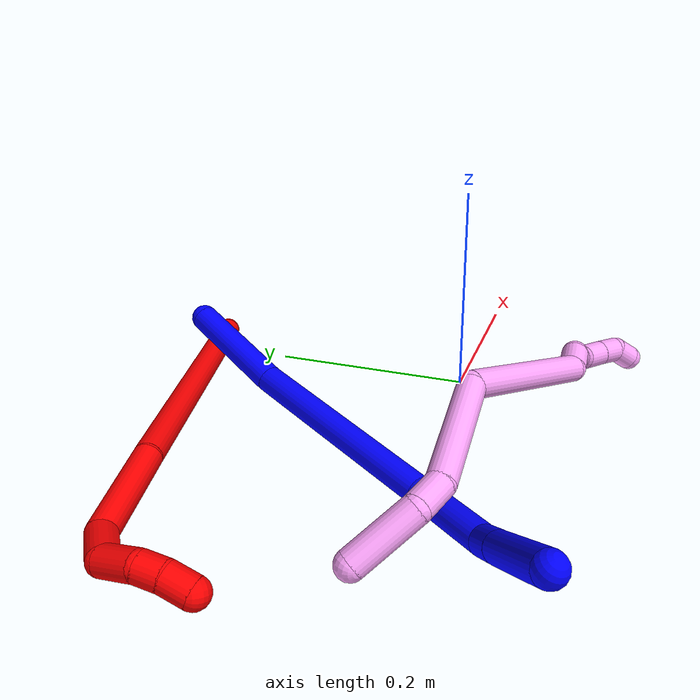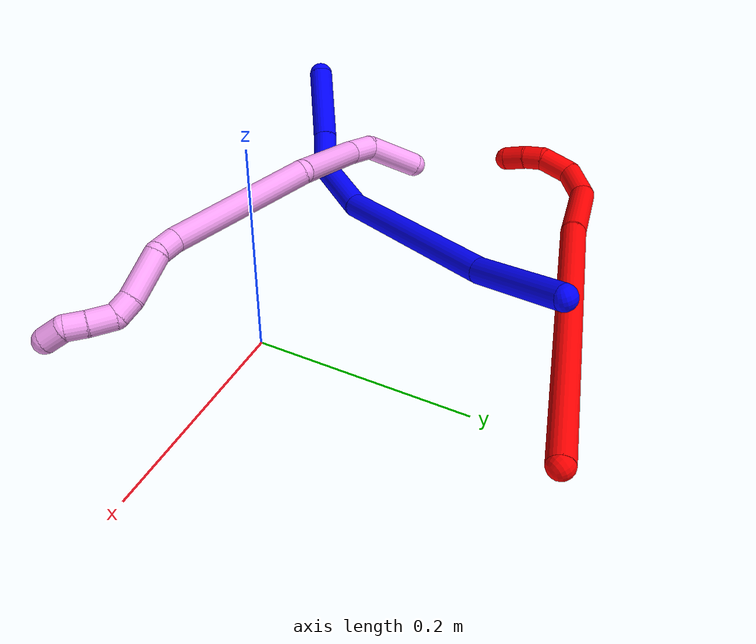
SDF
<sdf version="1.7">
 <world name="default">
  <model name="photoneo_s_sensor">
   <static>1</static>
   <pose>0 0 2 1.57079 1.57079 3.14159</pose>
   <link name="link">
    <inertial><mass>0.1</mass></inertial>
    <sensor name="sensor" type="depth">
     <update_rate>30</update_rate>
     <camera>
      <horizontal_fov>1.22</horizontal_fov>
      <image><width>1920</width><height>1200</height><format>B8G8R8</format></image>
      <clip><near>0.1</near><far>4</far></clip>
      <depth_camera><output>points</output></depth_camera>
     </camera>
     <plugin name="camera_plugin" filename="libgazebo_ros_depth_camera.so">
      <baseline>0.2</baseline>
      <alwaysOn>1</alwaysOn>
      <updateRate>0.0</updateRate>
      <cameraName>camera_ir</cameraName>
      <imageTopicName>/camera/color/image_raw</imageTopicName>
      <cameraInfoTopicName>/camera/color/camera_info</cameraInfoTopicName>
      <depthImageTopicName>/camera/depth/image_raw</depthImageTopicName>
      <depthImageCameraInfoTopicName>/camera/depth/camera_info</depthImageCameraInfoTopicName>
      <pointCloudTopicName>/camera/depth/points</pointCloudTopicName>
      <frameName>fr_optical</frameName>
      <pointCloudCutoff>0.1</pointCloudCutoff>
      <pointCloudCutoffMax>2.0</pointCloudCutoffMax>
      <distortionK1>0</distortionK1>
      <distortionK2>0</distortionK2>
      <distortionK3>0</distortionK3>
      <distortionT1>0</distortionT1>
      <distortionT2>0</distortionT2>
      <CxPrime>0</CxPrime>
      <Cx>0</Cx>
      <Cy>0</Cy>
      <focalLength>0</focalLength>
      <hackBaseline>0</hackBaseline>
     </plugin>
    </sensor>
   </link>
  </model>
  <model name="bin">
   <static>1</static>
   <link name="bottom">
    <collision name="collision-bottom">
     <pose>0 0 -0.01 0 -0 0</pose>
     <geometry><box><size>0.8 0.6 0.02</size></box></geometry>
     <surface>
      <friction><ode><mu>100</mu><mu2>100</mu2></ode></friction>
      <contact><collide_bitmask>65535</collide_bitmask></contact>
     </surface>
    </collision>
   </link>
   <link name="west_wall">
    <collision name="collision-west_wall">
     <pose>-0.41 0 0.1 0 -0 0</pose>
     <geometry><box><size>0.02 0.6 0.2</size></box></geometry>
     <surface>
      <friction><ode><mu>100</mu><mu2>100</mu2></ode></friction>
      <contact><collide_bitmask>65535</collide_bitmask></contact>
     </surface>
    </collision>
   </link>
   <link name="east_wall">
    <collision name="collision-east_wall">
     <pose>0.41 0 0.1 0 -0 0</pose>
     <geometry><box><size>0.02 0.6 0.2</size></box></geometry>
     <surface>
      <friction><ode><mu>100</mu><mu2>100</mu2></ode></friction>
      <contact><collide_bitmask>65535</collide_bitmask></contact>
     </surface>
    </collision>
   </link>
   <link name="south_wall">
    <collision name="collision-south_wall">
     <pose>0 -0.31 0.1 0 -0 0</pose>
     <geometry><box><size>0.8 0.02 0.2</size></box></geometry>
     <surface>
      <friction><ode><mu>100</mu><mu2>100</mu2></ode></friction>
      <contact><collide_bitmask>65535</collide_bitmask></contact>
     </surface>
    </collision>
   </link>
   <link name="north_wall">
    <collision name="collision-north_wall">
     <pose>0 0.31 0.1 0 -0 0</pose>
     <geometry><box><size>0.8 0.02 0.2</size></box></geometry>
     <surface>
      <friction><ode><mu>100</mu><mu2>100</mu2></ode></friction>
      <contact><collide_bitmask>65535</collide_bitmask></contact>
     </surface>
    </collision>
   </link>
  </model>
  <model name="1">
   <static>0</static>
   <link name="1">
    <collision name="collision-cylinder-e_1_1_4">
     <pose>0.004265 -0.051858 -0.007072 1.70633 0.081313 0.093138</pose>
     <geometry><cylinder><radius>0.0125</radius><length>0.105022</length></cylinder></geometry>
     <surface>
      <friction><ode><mu>1.16</mu><mu2>1.16</mu2><slip1>0</slip1><slip2>0</slip2></ode></friction>
      <contact><ode><kp>1e+06</kp><kd>1</kd><max_vel>0</max_vel><min_depth>0.001</min_depth></ode></contact>
     </surface>
    </collision>
    <visual name="visual-cylinder-e_1_1_4">
     <pose>0.004265 -0.051858 -0.007072 1.70633 0.081313 0.093138</pose>
     <geometry><cylinder><radius>0.0125</radius><length>0.105022</length></cylinder></geometry>
     <material><ambient>0 0 1 1</ambient></material>
    </visual>
    <collision name="collision-cylinder-e_2_4_5">
     <pose>0.01842 -0.195874 -0.041775 1.86209 0.102433 0.137553</pose>
     <geometry><cylinder><radius>0.0125</radius><length>0.193438</length></cylinder></geometry>
     <surface>
      <friction><ode><mu>1.16</mu><mu2>1.16</mu2><slip1>0</slip1><slip2>0</slip2></ode></friction>
      <contact><ode><kp>1e+06</kp><kd>1</kd><max_vel>0</max_vel><min_depth>0.001</min_depth></ode></contact>
     </surface>
    </collision>
    <visual name="visual-cylinder-e_2_4_5">
     <pose>0.01842 -0.195874 -0.041775 1.86209 0.102433 0.137553</pose>
     <geometry><cylinder><radius>0.0125</radius><length>0.193438</length></cylinder></geometry>
     <material><ambient>0 0 1 1</ambient></material>
    </visual>
    <collision name="collision-cylinder-e_3_5_6">
     <pose>0.039805 -0.321623 -0.087193 2.05777 0.293686 0.481823</pose>
     <geometry><cylinder><radius>0.0125</radius><length>0.079417</length></cylinder></geometry>
     <surface>
      <friction><ode><mu>1.16</mu><mu2>1.16</mu2><slip1>0</slip1><slip2>0</slip2></ode></friction>
      <contact><ode><kp>1e+06</kp><kd>1</kd><max_vel>0</max_vel><min_depth>0.001</min_depth></ode></contact>
     </surface>
    </collision>
    <visual name="visual-cylinder-e_3_5_6">
     <pose>0.039805 -0.321623 -0.087193 2.05777 0.293686 0.481823</pose>
     <geometry><cylinder><radius>0.0125</radius><length>0.079417</length></cylinder></geometry>
     <material><ambient>0 0 1 1</ambient></material>
    </visual>
    <collision name="collision-cylinder-e_4_6_7">
     <pose>0.062319 -0.362114 -0.119208 2.69001 0.608543 1.87848</pose>
     <geometry><cylinder><radius>0.0125</radius><length>0.038549</length></cylinder></geometry>
     <surface>
      <friction><ode><mu>1.16</mu><mu2>1.16</mu2><slip1>0</slip1><slip2>0</slip2></ode></friction>
      <contact><ode><kp>1e+06</kp><kd>1</kd><max_vel>0</max_vel><min_depth>0.001</min_depth></ode></contact>
     </surface>
    </collision>
    <visual name="visual-cylinder-e_4_6_7">
     <pose>0.062319 -0.362114 -0.119208 2.69001 0.608543 1.87848</pose>
     <geometry><cylinder><radius>0.0125</radius><length>0.038549</length></cylinder></geometry>
     <material><ambient>0 0 1 1</ambient></material>
    </visual>
    <collision name="collision-cylinder-e_5_7_2">
     <pose>0.095687 -0.385654 -0.164579 2.65088 0.564326 1.71674</pose>
     <geometry><cylinder><radius>0.0125</radius><length>0.083574</length></cylinder></geometry>
     <surface>
      <friction><ode><mu>1.16</mu><mu2>1.16</mu2><slip1>0</slip1><slip2>0</slip2></ode></friction>
      <contact><ode><kp>1e+06</kp><kd>1</kd><max_vel>0</max_vel><min_depth>0.001</min_depth></ode></contact>
     </surface>
    </collision>
    <visual name="visual-cylinder-e_5_7_2">
     <pose>0.095687 -0.385654 -0.164579 2.65088 0.564326 1.71674</pose>
     <geometry><cylinder><radius>0.0125</radius><length>0.083574</length></cylinder></geometry>
     <material><ambient>0 0 1 1</ambient></material>
    </visual>
    <collision name="collision-sphere-2">
     <pose>0.118036 -0.402293 -0.19572 0 -0 0</pose>
     <geometry><sphere><radius>0.0125</radius></sphere></geometry>
     <surface>
      <friction><ode><mu>1.16</mu><mu2>1.16</mu2><slip1>0</slip1><slip2>0</slip2></ode></friction>
      <contact><ode><kp>1e+06</kp><kd>1</kd><max_vel>0</max_vel><min_depth>0.001</min_depth></ode></contact>
     </surface>
    </collision>
    <visual name="visual-sphere-2">
     <pose>0.118036 -0.402293 -0.19572 0 -0 0</pose>
     <geometry><sphere><radius>0.0125</radius></sphere></geometry>
     <material><ambient>0 0 1 1</ambient></material>
    </visual>
    <collision name="collision-sphere-7">
     <pose>0.073337 -0.369015 -0.133438 0 -0 0</pose>
     <geometry><sphere><radius>0.0125</radius></sphere></geometry>
     <surface>
      <friction><ode><mu>1.16</mu><mu2>1.16</mu2><slip1>0</slip1><slip2>0</slip2></ode></friction>
      <contact><ode><kp>1e+06</kp><kd>1</kd><max_vel>0</max_vel><min_depth>0.001</min_depth></ode></contact>
     </surface>
    </collision>
    <visual name="visual-sphere-7">
     <pose>0.073337 -0.369015 -0.133438 0 -0 0</pose>
     <geometry><sphere><radius>0.0125</radius></sphere></geometry>
     <material><ambient>0 0 1 1</ambient></material>
    </visual>
    <collision name="collision-sphere-6">
     <pose>0.0513 -0.355213 -0.104979 0 -0 0</pose>
     <geometry><sphere><radius>0.0125</radius></sphere></geometry>
     <surface>
      <friction><ode><mu>1.16</mu><mu2>1.16</mu2><slip1>0</slip1><slip2>0</slip2></ode></friction>
      <contact><ode><kp>1e+06</kp><kd>1</kd><max_vel>0</max_vel><min_depth>0.001</min_depth></ode></contact>
     </surface>
    </collision>
    <visual name="visual-sphere-6">
     <pose>0.0513 -0.355213 -0.104979 0 -0 0</pose>
     <geometry><sphere><radius>0.0125</radius></sphere></geometry>
     <material><ambient>0 0 1 1</ambient></material>
    </visual>
    <collision name="collision-sphere-5">
     <pose>0.02831 -0.288033 -0.069407 0 -0 0</pose>
     <geometry><sphere><radius>0.0125</radius></sphere></geometry>
     <surface>
      <friction><ode><mu>1.16</mu><mu2>1.16</mu2><slip1>0</slip1><slip2>0</slip2></ode></friction>
      <contact><ode><kp>1e+06</kp><kd>1</kd><max_vel>0</max_vel><min_depth>0.001</min_depth></ode></contact>
     </surface>
    </collision>
    <visual name="visual-sphere-5">
     <pose>0.02831 -0.288033 -0.069407 0 -0 0</pose>
     <geometry><sphere><radius>0.0125</radius></sphere></geometry>
     <material><ambient>0 0 1 1</ambient></material>
    </visual>
    <collision name="collision-sphere-1">
     <geometry><sphere><radius>0.0125</radius></sphere></geometry>
     <surface>
      <friction><ode><mu>1.16</mu><mu2>1.16</mu2><slip1>0</slip1><slip2>0</slip2></ode></friction>
      <contact><ode><kp>1e+06</kp><kd>1</kd><max_vel>0</max_vel><min_depth>0.001</min_depth></ode></contact>
     </surface>
    </collision>
    <visual name="visual-sphere-1">
     <geometry><sphere><radius>0.0125</radius></sphere></geometry>
     <material><ambient>0 0 1 1</ambient></material>
    </visual>
    <collision name="collision-sphere-4">
     <pose>0.00853 -0.103715 -0.014144 0 -0 0</pose>
     <geometry><sphere><radius>0.0125</radius></sphere></geometry>
     <surface>
      <friction><ode><mu>1.16</mu><mu2>1.16</mu2><slip1>0</slip1><slip2>0</slip2></ode></friction>
      <contact><ode><kp>1e+06</kp><kd>1</kd><max_vel>0</max_vel><min_depth>0.001</min_depth></ode></contact>
     </surface>
    </collision>
    <visual name="visual-sphere-4">
     <pose>0.00853 -0.103715 -0.014144 0 -0 0</pose>
     <geometry><sphere><radius>0.0125</radius></sphere></geometry>
     <material><ambient>0 0 1 1</ambient></material>
    </visual>
    <inertial>
     <pose>0.035143 -0.230135 -0.068196 0 -0 0</pose>
     <mass>0.5</mass>
     <inertia>
      <ixx>0.000902</ixx>
      <ixy>0</ixy>
      <ixz>0</ixz>
      <iyy>-3.9e-05</iyy>
      <iyz>0</iyz>
      <izz>0.000612</izz>
     </inertia>
    </inertial>
   </link>
   <pose>-0.089279 0.242861 0.076738 2.68162 -0.008813 2.77817</pose>
  </model>
  <model name="2">
   <static>0</static>
   <link name="2">
    <collision name="collision-cylinder-e_1_1_4">
     <pose>-0.04969 -0.092992 0.103955 0.729788 -0.342239 -0.131835</pose>
     <geometry><cylinder><radius>0.0125</radius><length>0.296131</length></cylinder></geometry>
     <surface>
      <friction><ode><mu>1.16</mu><mu2>1.16</mu2><slip1>0</slip1><slip2>0</slip2></ode></friction>
      <contact><ode><kp>1e+06</kp><kd>1</kd><max_vel>0</max_vel><min_depth>0.001</min_depth></ode></contact>
     </surface>
    </collision>
    <visual name="visual-cylinder-e_1_1_4">
     <pose>-0.04969 -0.092992 0.103955 0.729788 -0.342239 -0.131835</pose>
     <geometry><cylinder><radius>0.0125</radius><length>0.296131</length></cylinder></geometry>
     <material><ambient>1 0 0 1</ambient></material>
    </visual>
    <collision name="collision-cylinder-e_2_4_5">
     <pose>-0.120975 -0.208218 0.239619 0.611547 -0.50867 -0.163761</pose>
     <geometry><cylinder><radius>0.0125</radius><length>0.088682</length></cylinder></geometry>
     <surface>
      <friction><ode><mu>1.16</mu><mu2>1.16</mu2><slip1>0</slip1><slip2>0</slip2></ode></friction>
      <contact><ode><kp>1e+06</kp><kd>1</kd><max_vel>0</max_vel><min_depth>0.001</min_depth></ode></contact>
     </surface>
    </collision>
    <visual name="visual-cylinder-e_2_4_5">
     <pose>-0.120975 -0.208218 0.239619 0.611547 -0.50867 -0.163761</pose>
     <geometry><cylinder><radius>0.0125</radius><length>0.088682</length></cylinder></geometry>
     <material><ambient>1 0 0 1</ambient></material>
    </visual>
    <collision name="collision-cylinder-e_3_5_6">
     <pose>-0.147418 -0.247608 0.279114 1.14472 -0.25187 -0.162784</pose>
     <geometry><cylinder><radius>0.0125</radius><length>0.038906</length></cylinder></geometry>
     <surface>
      <friction><ode><mu>1.16</mu><mu2>1.16</mu2><slip1>0</slip1><slip2>0</slip2></ode></friction>
      <contact><ode><kp>1e+06</kp><kd>1</kd><max_vel>0</max_vel><min_depth>0.001</min_depth></ode></contact>
     </surface>
    </collision>
    <visual name="visual-cylinder-e_3_5_6">
     <pose>-0.147418 -0.247608 0.279114 1.14472 -0.25187 -0.162784</pose>
     <geometry><cylinder><radius>0.0125</radius><length>0.038906</length></cylinder></geometry>
     <material><ambient>1 0 0 1</ambient></material>
    </visual>
    <collision name="collision-cylinder-e_4_6_7">
     <pose>-0.152096 -0.280642 0.282109 1.86379 0.010244 0.013791</pose>
     <geometry><cylinder><radius>0.0125</radius><length>0.033174</length></cylinder></geometry>
     <surface>
      <friction><ode><mu>1.16</mu><mu2>1.16</mu2><slip1>0</slip1><slip2>0</slip2></ode></friction>
      <contact><ode><kp>1e+06</kp><kd>1</kd><max_vel>0</max_vel><min_depth>0.001</min_depth></ode></contact>
     </surface>
    </collision>
    <visual name="visual-cylinder-e_4_6_7">
     <pose>-0.152096 -0.280642 0.282109 1.86379 0.010244 0.013791</pose>
     <geometry><cylinder><radius>0.0125</radius><length>0.033174</length></cylinder></geometry>
     <material><ambient>1 0 0 1</ambient></material>
    </visual>
    <collision name="collision-cylinder-e_5_7_8">
     <pose>-0.154829 -0.304668 0.272221 2.12994 -0.293398 -0.521392</pose>
     <geometry><cylinder><radius>0.0125</radius><length>0.020078</length></cylinder></geometry>
     <surface>
      <friction><ode><mu>1.16</mu><mu2>1.16</mu2><slip1>0</slip1><slip2>0</slip2></ode></friction>
      <contact><ode><kp>1e+06</kp><kd>1</kd><max_vel>0</max_vel><min_depth>0.001</min_depth></ode></contact>
     </surface>
    </collision>
    <visual name="visual-cylinder-e_5_7_8">
     <pose>-0.154829 -0.304668 0.272221 2.12994 -0.293398 -0.521392</pose>
     <geometry><cylinder><radius>0.0125</radius><length>0.020078</length></cylinder></geometry>
     <material><ambient>1 0 0 1</ambient></material>
    </visual>
    <collision name="collision-cylinder-e_6_8_2">
     <pose>-0.162967 -0.321288 0.261345 2.16937 -0.471896 -0.854019</pose>
     <geometry><cylinder><radius>0.0125</radius><length>0.023029</length></cylinder></geometry>
     <surface>
      <friction><ode><mu>1.16</mu><mu2>1.16</mu2><slip1>0</slip1><slip2>0</slip2></ode></friction>
      <contact><ode><kp>1e+06</kp><kd>1</kd><max_vel>0</max_vel><min_depth>0.001</min_depth></ode></contact>
     </surface>
    </collision>
    <visual name="visual-cylinder-e_6_8_2">
     <pose>-0.162967 -0.321288 0.261345 2.16937 -0.471896 -0.854019</pose>
     <geometry><cylinder><radius>0.0125</radius><length>0.023029</length></cylinder></geometry>
     <material><ambient>1 0 0 1</ambient></material>
    </visual>
    <collision name="collision-sphere-2">
     <pose>-0.168201 -0.329761 0.255566 0 -0 0</pose>
     <geometry><sphere><radius>0.0125</radius></sphere></geometry>
     <surface>
      <friction><ode><mu>1.16</mu><mu2>1.16</mu2><slip1>0</slip1><slip2>0</slip2></ode></friction>
      <contact><ode><kp>1e+06</kp><kd>1</kd><max_vel>0</max_vel><min_depth>0.001</min_depth></ode></contact>
     </surface>
    </collision>
    <visual name="visual-sphere-2">
     <pose>-0.168201 -0.329761 0.255566 0 -0 0</pose>
     <geometry><sphere><radius>0.0125</radius></sphere></geometry>
     <material><ambient>1 0 0 1</ambient></material>
    </visual>
    <collision name="collision-sphere-4">
     <pose>-0.099381 -0.185984 0.207911 0 -0 0</pose>
     <geometry><sphere><radius>0.0125</radius></sphere></geometry>
     <surface>
      <friction><ode><mu>1.16</mu><mu2>1.16</mu2><slip1>0</slip1><slip2>0</slip2></ode></friction>
      <contact><ode><kp>1e+06</kp><kd>1</kd><max_vel>0</max_vel><min_depth>0.001</min_depth></ode></contact>
     </surface>
    </collision>
    <visual name="visual-sphere-4">
     <pose>-0.099381 -0.185984 0.207911 0 -0 0</pose>
     <geometry><sphere><radius>0.0125</radius></sphere></geometry>
     <material><ambient>1 0 0 1</ambient></material>
    </visual>
    <collision name="collision-sphere-1">
     <geometry><sphere><radius>0.0125</radius></sphere></geometry>
     <surface>
      <friction><ode><mu>1.16</mu><mu2>1.16</mu2><slip1>0</slip1><slip2>0</slip2></ode></friction>
      <contact><ode><kp>1e+06</kp><kd>1</kd><max_vel>0</max_vel><min_depth>0.001</min_depth></ode></contact>
     </surface>
    </collision>
    <visual name="visual-sphere-1">
     <geometry><sphere><radius>0.0125</radius></sphere></geometry>
     <material><ambient>1 0 0 1</ambient></material>
    </visual>
    <collision name="collision-sphere-8">
     <pose>-0.157733 -0.312815 0.267124 0 -0 0</pose>
     <geometry><sphere><radius>0.0125</radius></sphere></geometry>
     <surface>
      <friction><ode><mu>1.16</mu><mu2>1.16</mu2><slip1>0</slip1><slip2>0</slip2></ode></friction>
      <contact><ode><kp>1e+06</kp><kd>1</kd><max_vel>0</max_vel><min_depth>0.001</min_depth></ode></contact>
     </surface>
    </collision>
    <visual name="visual-sphere-8">
     <pose>-0.157733 -0.312815 0.267124 0 -0 0</pose>
     <geometry><sphere><radius>0.0125</radius></sphere></geometry>
     <material><ambient>1 0 0 1</ambient></material>
    </visual>
    <collision name="collision-sphere-5">
     <pose>-0.14257 -0.230453 0.271327 0 -0 0</pose>
     <geometry><sphere><radius>0.0125</radius></sphere></geometry>
     <surface>
      <friction><ode><mu>1.16</mu><mu2>1.16</mu2><slip1>0</slip1><slip2>0</slip2></ode></friction>
      <contact><ode><kp>1e+06</kp><kd>1</kd><max_vel>0</max_vel><min_depth>0.001</min_depth></ode></contact>
     </surface>
    </collision>
    <visual name="visual-sphere-5">
     <pose>-0.14257 -0.230453 0.271327 0 -0 0</pose>
     <geometry><sphere><radius>0.0125</radius></sphere></geometry>
     <material><ambient>1 0 0 1</ambient></material>
    </visual>
    <collision name="collision-sphere-6">
     <pose>-0.152266 -0.264763 0.2869 0 -0 0</pose>
     <geometry><sphere><radius>0.0125</radius></sphere></geometry>
     <surface>
      <friction><ode><mu>1.16</mu><mu2>1.16</mu2><slip1>0</slip1><slip2>0</slip2></ode></friction>
      <contact><ode><kp>1e+06</kp><kd>1</kd><max_vel>0</max_vel><min_depth>0.001</min_depth></ode></contact>
     </surface>
    </collision>
    <visual name="visual-sphere-6">
     <pose>-0.152266 -0.264763 0.2869 0 -0 0</pose>
     <geometry><sphere><radius>0.0125</radius></sphere></geometry>
     <material><ambient>1 0 0 1</ambient></material>
    </visual>
    <collision name="collision-sphere-7">
     <pose>-0.151926 -0.296522 0.277319 0 -0 0</pose>
     <geometry><sphere><radius>0.0125</radius></sphere></geometry>
     <surface>
      <friction><ode><mu>1.16</mu><mu2>1.16</mu2><slip1>0</slip1><slip2>0</slip2></ode></friction>
      <contact><ode><kp>1e+06</kp><kd>1</kd><max_vel>0</max_vel><min_depth>0.001</min_depth></ode></contact>
     </surface>
    </collision>
    <visual name="visual-sphere-7">
     <pose>-0.151926 -0.296522 0.277319 0 -0 0</pose>
     <geometry><sphere><radius>0.0125</radius></sphere></geometry>
     <material><ambient>1 0 0 1</ambient></material>
    </visual>
    <inertial>
     <pose>-0.086172 -0.156925 0.167473 0 -0 0</pose>
     <mass>0.5</mass>
     <inertia>
      <ixx>0.001803</ixx>
      <ixy>0</ixy>
      <ixz>0</ixz>
      <iyy>0.001418</iyy>
      <iyz>0</iyz>
      <izz>0.002193</izz>
     </inertia>
    </inertial>
   </link>
   <pose>0.027063 0.28527 0.011498 -0.843025 -1.18651 0.380143</pose>
  </model>
  <model name="4">
   <static>0</static>
   <link name="4">
    <collision name="collision-cylinder-e_1_1_4">
     <pose>0.01858 -0.023678 -0.002997 1.69669 0.661492 0.74294</pose>
     <geometry><cylinder><radius>0.0125</radius><length>0.060493</length></cylinder></geometry>
     <surface>
      <friction><ode><mu>1.16</mu><mu2>1.16</mu2><slip1>0</slip1><slip2>0</slip2></ode></friction>
      <contact><ode><kp>1e+06</kp><kd>1</kd><max_vel>0</max_vel><min_depth>0.001</min_depth></ode></contact>
     </surface>
    </collision>
    <visual name="visual-cylinder-e_1_1_4">
     <pose>0.01858 -0.023678 -0.002997 1.69669 0.661492 0.74294</pose>
     <geometry><cylinder><radius>0.0125</radius><length>0.060493</length></cylinder></geometry>
     <material><ambient>1 0.65098 0.996078 1</ambient></material>
    </visual>
    <collision name="collision-cylinder-e_2_4_5">
     <pose>0.048871 -0.055034 -0.000437 0.944297 0.890377 0.478004</pose>
     <geometry><cylinder><radius>0.0125</radius><length>0.030131</length></cylinder></geometry>
     <surface>
      <friction><ode><mu>1.16</mu><mu2>1.16</mu2><slip1>0</slip1><slip2>0</slip2></ode></friction>
      <contact><ode><kp>1e+06</kp><kd>1</kd><max_vel>0</max_vel><min_depth>0.001</min_depth></ode></contact>
     </surface>
    </collision>
    <visual name="visual-cylinder-e_2_4_5">
     <pose>0.048871 -0.055034 -0.000437 0.944297 0.890377 0.478004</pose>
     <geometry><cylinder><radius>0.0125</radius><length>0.030131</length></cylinder></geometry>
     <material><ambient>1 0.65098 0.996078 1</ambient></material>
    </visual>
    <collision name="collision-cylinder-e_3_5_6">
     <pose>0.088241 -0.093291 0.037385 0.758583 0.556601 0.22679</pose>
     <geometry><cylinder><radius>0.0125</radius><length>0.104712</length></cylinder></geometry>
     <surface>
      <friction><ode><mu>1.16</mu><mu2>1.16</mu2><slip1>0</slip1><slip2>0</slip2></ode></friction>
      <contact><ode><kp>1e+06</kp><kd>1</kd><max_vel>0</max_vel><min_depth>0.001</min_depth></ode></contact>
     </surface>
    </collision>
    <visual name="visual-cylinder-e_3_5_6">
     <pose>0.088241 -0.093291 0.037385 0.758583 0.556601 0.22679</pose>
     <geometry><cylinder><radius>0.0125</radius><length>0.104712</length></cylinder></geometry>
     <material><ambient>1 0.65098 0.996078 1</ambient></material>
    </visual>
    <collision name="collision-cylinder-e_4_6_7">
     <pose>0.184144 -0.135737 0.084478 0.674933 1.29937 0.521028</pose>
     <geometry><cylinder><radius>0.0125</radius><length>0.141672</length></cylinder></geometry>
     <surface>
      <friction><ode><mu>1.16</mu><mu2>1.16</mu2><slip1>0</slip1><slip2>0</slip2></ode></friction>
      <contact><ode><kp>1e+06</kp><kd>1</kd><max_vel>0</max_vel><min_depth>0.001</min_depth></ode></contact>
     </surface>
    </collision>
    <visual name="visual-cylinder-e_4_6_7">
     <pose>0.184144 -0.135737 0.084478 0.674933 1.29937 0.521028</pose>
     <geometry><cylinder><radius>0.0125</radius><length>0.141672</length></cylinder></geometry>
     <material><ambient>1 0.65098 0.996078 1</ambient></material>
    </visual>
    <collision name="collision-cylinder-e_5_7_8">
     <pose>0.260734 -0.153251 0.108611 0.545457 0.654185 0.189225</pose>
     <geometry><cylinder><radius>0.0125</radius><length>0.027433</length></cylinder></geometry>
     <surface>
      <friction><ode><mu>1.16</mu><mu2>1.16</mu2><slip1>0</slip1><slip2>0</slip2></ode></friction>
      <contact><ode><kp>1e+06</kp><kd>1</kd><max_vel>0</max_vel><min_depth>0.001</min_depth></ode></contact>
     </surface>
    </collision>
    <visual name="visual-cylinder-e_5_7_8">
     <pose>0.260734 -0.153251 0.108611 0.545457 0.654185 0.189225</pose>
     <geometry><cylinder><radius>0.0125</radius><length>0.027433</length></cylinder></geometry>
     <material><ambient>1 0.65098 0.996078 1</ambient></material>
    </visual>
    <collision name="collision-cylinder-e_6_8_9">
     <pose>0.287522 -0.154911 0.132828 -0.261266 0.873883 -0.122569</pose>
     <geometry><cylinder><radius>0.0125</radius><length>0.048098</length></cylinder></geometry>
     <surface>
      <friction><ode><mu>1.16</mu><mu2>1.16</mu2><slip1>0</slip1><slip2>0</slip2></ode></friction>
      <contact><ode><kp>1e+06</kp><kd>1</kd><max_vel>0</max_vel><min_depth>0.001</min_depth></ode></contact>
     </surface>
    </collision>
    <visual name="visual-cylinder-e_6_8_9">
     <pose>0.287522 -0.154911 0.132828 -0.261266 0.873883 -0.122569</pose>
     <geometry><cylinder><radius>0.0125</radius><length>0.048098</length></cylinder></geometry>
     <material><ambient>1 0.65098 0.996078 1</ambient></material>
    </visual>
    <collision name="collision-cylinder-e_7_9_10">
     <pose>0.314852 -0.150605 0.152787 -0.063 1.05354 -0.036648</pose>
     <geometry><cylinder><radius>0.0125</radius><length>0.020452</length></cylinder></geometry>
     <surface>
      <friction><ode><mu>1.16</mu><mu2>1.16</mu2><slip1>0</slip1><slip2>0</slip2></ode></friction>
      <contact><ode><kp>1e+06</kp><kd>1</kd><max_vel>0</max_vel><min_depth>0.001</min_depth></ode></contact>
     </surface>
    </collision>
    <visual name="visual-cylinder-e_7_9_10">
     <pose>0.314852 -0.150605 0.152787 -0.063 1.05354 -0.036648</pose>
     <geometry><cylinder><radius>0.0125</radius><length>0.020452</length></cylinder></geometry>
     <material><ambient>1 0.65098 0.996078 1</ambient></material>
    </visual>
    <collision name="collision-cylinder-e_8_10_11">
     <pose>0.335753 -0.154687 0.15817 1.49463 1.21876 1.14818</pose>
     <geometry><cylinder><radius>0.0125</radius><length>0.025596</length></cylinder></geometry>
     <surface>
      <friction><ode><mu>1.16</mu><mu2>1.16</mu2><slip1>0</slip1><slip2>0</slip2></ode></friction>
      <contact><ode><kp>1e+06</kp><kd>1</kd><max_vel>0</max_vel><min_depth>0.001</min_depth></ode></contact>
     </surface>
    </collision>
    <visual name="visual-cylinder-e_8_10_11">
     <pose>0.335753 -0.154687 0.15817 1.49463 1.21876 1.14818</pose>
     <geometry><cylinder><radius>0.0125</radius><length>0.025596</length></cylinder></geometry>
     <material><ambient>1 0.65098 0.996078 1</ambient></material>
    </visual>
    <collision name="collision-cylinder-e_9_11_12">
     <pose>0.357203 -0.162673 0.157818 1.76016 1.20163 1.38454</pose>
     <geometry><cylinder><radius>0.0125</radius><length>0.020237</length></cylinder></geometry>
     <surface>
      <friction><ode><mu>1.16</mu><mu2>1.16</mu2><slip1>0</slip1><slip2>0</slip2></ode></friction>
      <contact><ode><kp>1e+06</kp><kd>1</kd><max_vel>0</max_vel><min_depth>0.001</min_depth></ode></contact>
     </surface>
    </collision>
    <visual name="visual-cylinder-e_9_11_12">
     <pose>0.357203 -0.162673 0.157818 1.76016 1.20163 1.38454</pose>
     <geometry><cylinder><radius>0.0125</radius><length>0.020237</length></cylinder></geometry>
     <material><ambient>1 0.65098 0.996078 1</ambient></material>
    </visual>
    <collision name="collision-cylinder-e_10_12_2">
     <pose>0.376786 -0.163641 0.155615 -2.09562 1.28102 -1.82482</pose>
     <geometry><cylinder><radius>0.0125</radius><length>0.021175</length></cylinder></geometry>
     <surface>
      <friction><ode><mu>1.16</mu><mu2>1.16</mu2><slip1>0</slip1><slip2>0</slip2></ode></friction>
      <contact><ode><kp>1e+06</kp><kd>1</kd><max_vel>0</max_vel><min_depth>0.001</min_depth></ode></contact>
     </surface>
    </collision>
    <visual name="visual-cylinder-e_10_12_2">
     <pose>0.376786 -0.163641 0.155615 -2.09562 1.28102 -1.82482</pose>
     <geometry><cylinder><radius>0.0125</radius><length>0.021175</length></cylinder></geometry>
     <material><ambient>1 0.65098 0.996078 1</ambient></material>
    </visual>
    <collision name="collision-sphere-2">
     <pose>0.386932 -0.161023 0.154099 0 -0 0</pose>
     <geometry><sphere><radius>0.0125</radius></sphere></geometry>
     <surface>
      <friction><ode><mu>1.16</mu><mu2>1.16</mu2><slip1>0</slip1><slip2>0</slip2></ode></friction>
      <contact><ode><kp>1e+06</kp><kd>1</kd><max_vel>0</max_vel><min_depth>0.001</min_depth></ode></contact>
     </surface>
    </collision>
    <visual name="visual-sphere-2">
     <pose>0.386932 -0.161023 0.154099 0 -0 0</pose>
     <geometry><sphere><radius>0.0125</radius></sphere></geometry>
     <material><ambient>1 0.65098 0.996078 1</ambient></material>
    </visual>
    <collision name="collision-sphere-12">
     <pose>0.36664 -0.166259 0.157131 0 -0 0</pose>
     <geometry><sphere><radius>0.0125</radius></sphere></geometry>
     <surface>
      <friction><ode><mu>1.16</mu><mu2>1.16</mu2><slip1>0</slip1><slip2>0</slip2></ode></friction>
      <contact><ode><kp>1e+06</kp><kd>1</kd><max_vel>0</max_vel><min_depth>0.001</min_depth></ode></contact>
     </surface>
    </collision>
    <visual name="visual-sphere-12">
     <pose>0.36664 -0.166259 0.157131 0 -0 0</pose>
     <geometry><sphere><radius>0.0125</radius></sphere></geometry>
     <material><ambient>1 0.65098 0.996078 1</ambient></material>
    </visual>
    <collision name="collision-sphere-11">
     <pose>0.347766 -0.159087 0.158506 0 -0 0</pose>
     <geometry><sphere><radius>0.0125</radius></sphere></geometry>
     <surface>
      <friction><ode><mu>1.16</mu><mu2>1.16</mu2><slip1>0</slip1><slip2>0</slip2></ode></friction>
      <contact><ode><kp>1e+06</kp><kd>1</kd><max_vel>0</max_vel><min_depth>0.001</min_depth></ode></contact>
     </surface>
    </collision>
    <visual name="visual-sphere-11">
     <pose>0.347766 -0.159087 0.158506 0 -0 0</pose>
     <geometry><sphere><radius>0.0125</radius></sphere></geometry>
     <material><ambient>1 0.65098 0.996078 1</ambient></material>
    </visual>
    <collision name="collision-sphere-10">
     <pose>0.32374 -0.150287 0.157834 0 -0 0</pose>
     <geometry><sphere><radius>0.0125</radius></sphere></geometry>
     <surface>
      <friction><ode><mu>1.16</mu><mu2>1.16</mu2><slip1>0</slip1><slip2>0</slip2></ode></friction>
      <contact><ode><kp>1e+06</kp><kd>1</kd><max_vel>0</max_vel><min_depth>0.001</min_depth></ode></contact>
     </surface>
    </collision>
    <visual name="visual-sphere-10">
     <pose>0.32374 -0.150287 0.157834 0 -0 0</pose>
     <geometry><sphere><radius>0.0125</radius></sphere></geometry>
     <material><ambient>1 0.65098 0.996078 1</ambient></material>
    </visual>
    <collision name="collision-sphere-9">
     <pose>0.305963 -0.150924 0.147741 0 -0 0</pose>
     <geometry><sphere><radius>0.0125</radius></sphere></geometry>
     <surface>
      <friction><ode><mu>1.16</mu><mu2>1.16</mu2><slip1>0</slip1><slip2>0</slip2></ode></friction>
      <contact><ode><kp>1e+06</kp><kd>1</kd><max_vel>0</max_vel><min_depth>0.001</min_depth></ode></contact>
     </surface>
    </collision>
    <visual name="visual-sphere-9">
     <pose>0.305963 -0.150924 0.147741 0 -0 0</pose>
     <geometry><sphere><radius>0.0125</radius></sphere></geometry>
     <material><ambient>1 0.65098 0.996078 1</ambient></material>
    </visual>
    <collision name="collision-sphere-4">
     <pose>0.03716 -0.047356 -0.005994 0 -0 0</pose>
     <geometry><sphere><radius>0.0125</radius></sphere></geometry>
     <surface>
      <friction><ode><mu>1.16</mu><mu2>1.16</mu2><slip1>0</slip1><slip2>0</slip2></ode></friction>
      <contact><ode><kp>1e+06</kp><kd>1</kd><max_vel>0</max_vel><min_depth>0.001</min_depth></ode></contact>
     </surface>
    </collision>
    <visual name="visual-sphere-4">
     <pose>0.03716 -0.047356 -0.005994 0 -0 0</pose>
     <geometry><sphere><radius>0.0125</radius></sphere></geometry>
     <material><ambient>1 0.65098 0.996078 1</ambient></material>
    </visual>
    <collision name="collision-sphere-1">
     <geometry><sphere><radius>0.0125</radius></sphere></geometry>
     <surface>
      <friction><ode><mu>1.16</mu><mu2>1.16</mu2><slip1>0</slip1><slip2>0</slip2></ode></friction>
      <contact><ode><kp>1e+06</kp><kd>1</kd><max_vel>0</max_vel><min_depth>0.001</min_depth></ode></contact>
     </surface>
    </collision>
    <visual name="visual-sphere-1">
     <geometry><sphere><radius>0.0125</radius></sphere></geometry>
     <material><ambient>1 0.65098 0.996078 1</ambient></material>
    </visual>
    <collision name="collision-sphere-8">
     <pose>0.26908 -0.158898 0.117916 0 -0 0</pose>
     <geometry><sphere><radius>0.0125</radius></sphere></geometry>
     <surface>
      <friction><ode><mu>1.16</mu><mu2>1.16</mu2><slip1>0</slip1><slip2>0</slip2></ode></friction>
      <contact><ode><kp>1e+06</kp><kd>1</kd><max_vel>0</max_vel><min_depth>0.001</min_depth></ode></contact>
     </surface>
    </collision>
    <visual name="visual-sphere-8">
     <pose>0.26908 -0.158898 0.117916 0 -0 0</pose>
     <geometry><sphere><radius>0.0125</radius></sphere></geometry>
     <material><ambient>1 0.65098 0.996078 1</ambient></material>
    </visual>
    <collision name="collision-sphere-5">
     <pose>0.060581 -0.062712 0.005121 0 -0 0</pose>
     <geometry><sphere><radius>0.0125</radius></sphere></geometry>
     <surface>
      <friction><ode><mu>1.16</mu><mu2>1.16</mu2><slip1>0</slip1><slip2>0</slip2></ode></friction>
      <contact><ode><kp>1e+06</kp><kd>1</kd><max_vel>0</max_vel><min_depth>0.001</min_depth></ode></contact>
     </surface>
    </collision>
    <visual name="visual-sphere-5">
     <pose>0.060581 -0.062712 0.005121 0 -0 0</pose>
     <geometry><sphere><radius>0.0125</radius></sphere></geometry>
     <material><ambient>1 0.65098 0.996078 1</ambient></material>
    </visual>
    <collision name="collision-sphere-6">
     <pose>0.115901 -0.12387 0.06965 0 -0 0</pose>
     <geometry><sphere><radius>0.0125</radius></sphere></geometry>
     <surface>
      <friction><ode><mu>1.16</mu><mu2>1.16</mu2><slip1>0</slip1><slip2>0</slip2></ode></friction>
      <contact><ode><kp>1e+06</kp><kd>1</kd><max_vel>0</max_vel><min_depth>0.001</min_depth></ode></contact>
     </surface>
    </collision>
    <visual name="visual-sphere-6">
     <pose>0.115901 -0.12387 0.06965 0 -0 0</pose>
     <geometry><sphere><radius>0.0125</radius></sphere></geometry>
     <material><ambient>1 0.65098 0.996078 1</ambient></material>
    </visual>
    <collision name="collision-sphere-7">
     <pose>0.252387 -0.147604 0.099306 0 -0 0</pose>
     <geometry><sphere><radius>0.0125</radius></sphere></geometry>
     <surface>
      <friction><ode><mu>1.16</mu><mu2>1.16</mu2><slip1>0</slip1><slip2>0</slip2></ode></friction>
      <contact><ode><kp>1e+06</kp><kd>1</kd><max_vel>0</max_vel><min_depth>0.001</min_depth></ode></contact>
     </surface>
    </collision>
    <visual name="visual-sphere-7">
     <pose>0.252387 -0.147604 0.099306 0 -0 0</pose>
     <geometry><sphere><radius>0.0125</radius></sphere></geometry>
     <material><ambient>1 0.65098 0.996078 1</ambient></material>
    </visual>
    <inertial>
     <pose>0.178294 -0.115082 0.077438 0 -0 0</pose>
     <mass>0.5</mass>
     <inertia>
      <ixx>0.000257</ixx>
      <ixy>0</ixy>
      <ixz>0</ixz>
      <iyy>0.000396</iyy>
      <iyz>0</iyz>
      <izz>-0.000189</izz>
     </inertia>
    </inertial>
   </link>
   <pose>-0.320016 0.003651 0.011494 -1.65582 0.363871 -0.768991</pose>
  </model>
 </world>
</sdf>
